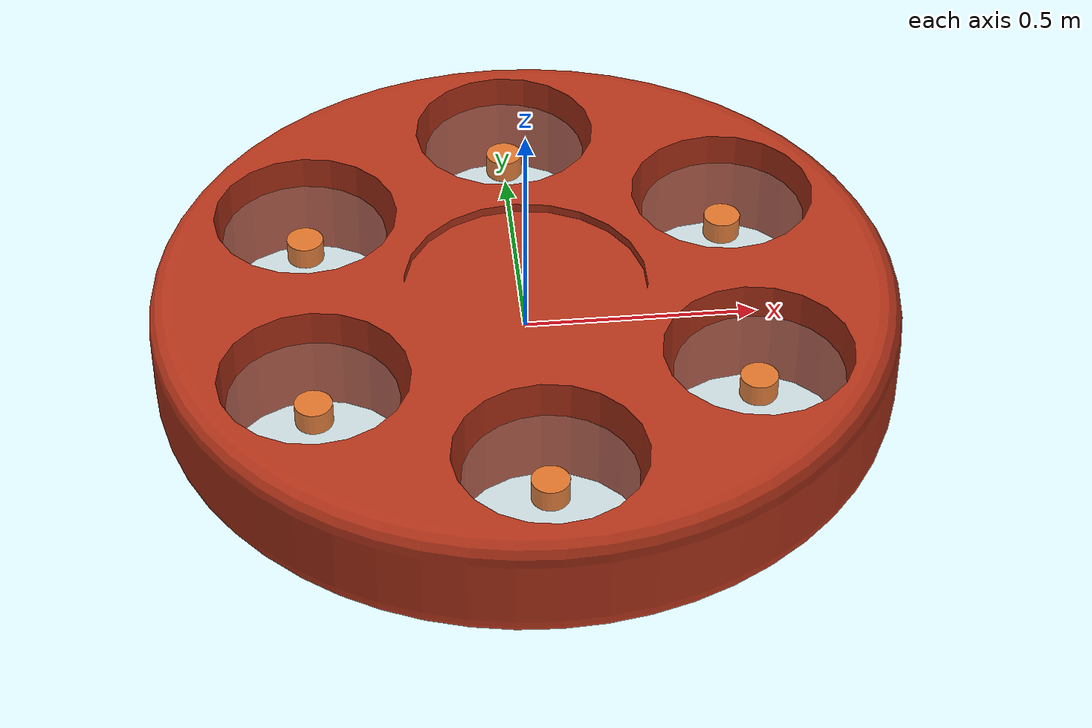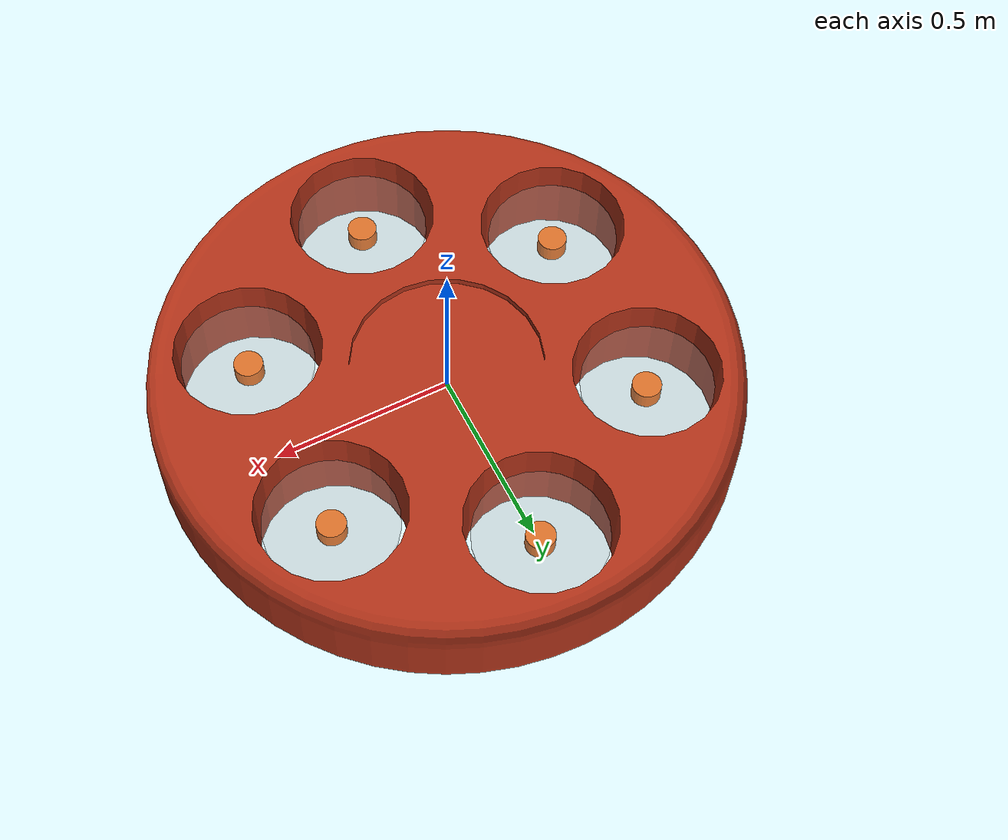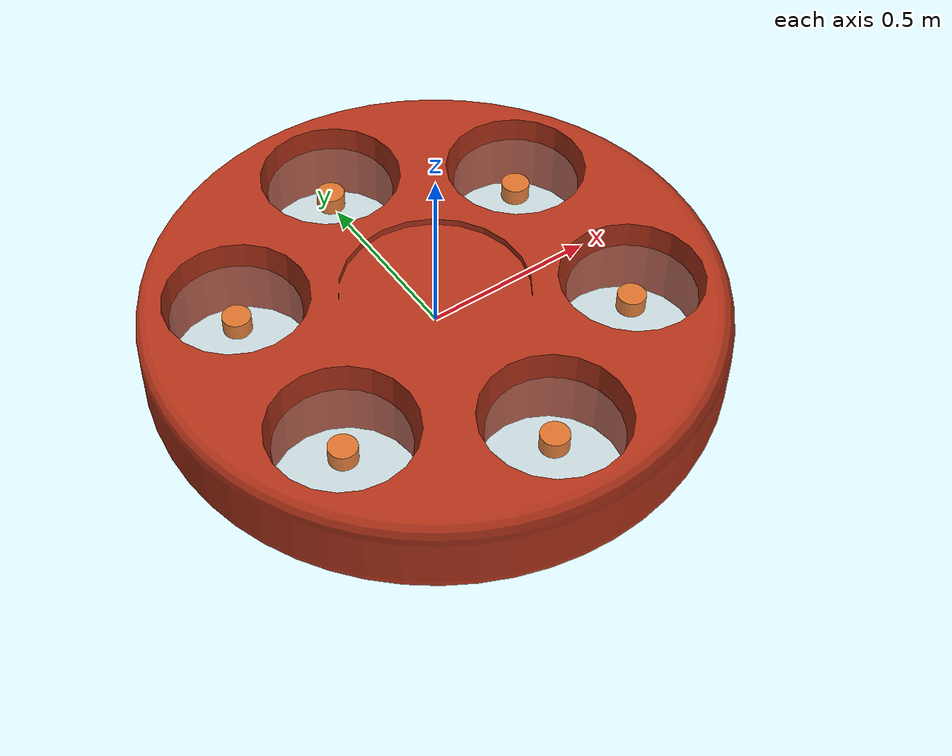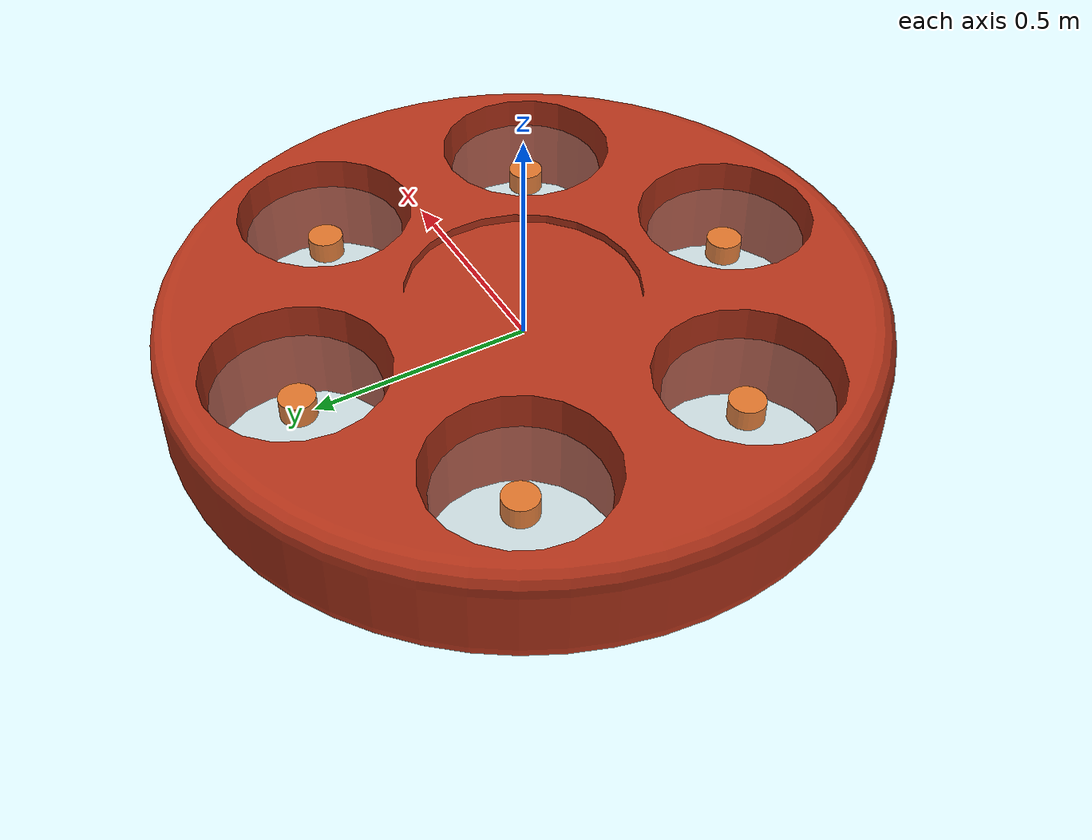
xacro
<?xml version="1.0"?>
<robot xmlns:xacro="http://ros.org/wiki/xacro" name="copter">

<!-- Ray macros -->
	<xacro:include filename="$(find theatre_uav_description)/urdf/test_ray.xacro"/>

  	<xacro:include filename="$(find theatre_uav_description)/urdf/common_properties.xacro"/>
<!-- Build the body frame -->

	<link name="frame">
		<collision>
			<origin	xyz="0 0 0" rpy="0 0 0" />
			<geometry>
				<cylinder radius="0.8" length="0.25"/>
			</geometry>
		</collision>
    		<visual>
      			<origin	xyz="0 0 0" rpy="${M_PI/2} 0 0" />
      			<geometry>
				<mesh filename="package://theatre_uav_description/meshes/frame.stl" />
      			</geometry>
     			<material name="Red" />
    		</visual>
		<inertial>
			<mass value="1.5"/>
			<inertia 	ixx="0" ixy="0" ixz="0"
					iyy="0" iyz="0"
					izz="0"/>
		</inertial>
	</link>

<!-- Build copter rays -->
	<ray_stick side="r" num="1" 	angle="-${M_PI/6}" />
	<ray_stick side="r" num="2"	angle="-${M_PI/2}" />
	<ray_stick side="r" num="3" 	angle="-${M_PI*5/6}" />
	<ray_stick side="l" num="1"	angle="${M_PI/6}" />
	<ray_stick side="l" num="2"	angle="${M_PI/2}" />
	<ray_stick side="l" num="3" 	angle="${M_PI*5/6}" />

</robot>

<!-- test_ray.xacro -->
<robot xmlns:xacro="http://ros.org/wiki/xacro" name="copter_ray">

<!-- Build ray -->
	<xacro:macro name="ray_stick" params="side num angle">

  	<joint name="ray_joint_${side}${num}" type="revolute">
    		<origin xyz="0 0 0" rpy="0 0 ${angle}" />
    		<parent link="frame" />
    		<child link="arm_${side}${num}" />
		<limit lower="0" upper="0" effort="0" velocity="0" />
  	</joint>

    	<link name="arm_${side}${num}">
		<inertial>
			<mass value="0.08"/>
			<inertia 	ixx="0" ixy="0" ixz="0"
					iyy="0" iyz="0"
					izz="0"/>
		</inertial>
	</link>

  	<joint name="motor_joint_${side}${num}" type="revolute">
    		<origin xyz="0.535 0 0" rpy="0 0 0" />
    		<parent link="arm_${side}${num}" />
    		<child link="motor_${side}${num}" />
		<limit lower="0" upper="0" effort="0" velocity="0" />
  	</joint>

    	<link name="motor_${side}${num}">
    		<visual>
      			<origin	xyz="0 0 0.03" rpy="0 0 0" />
      			<geometry>
				<cylinder radius="0.04" length="0.05"/>
      			</geometry>
     			<material name="Orange" />
    		</visual>
		<inertial>
			<mass value="0.055"/>
			<inertia 	ixx="0" ixy="0" ixz="0"
					iyy="0" iyz="0"
					izz="0"/>
		</inertial>
	</link>

  	<joint name="propeller_joint_${side}${num}" type="revolute">
    		<origin xyz="0 0 0.055" rpy="0 0 0" />
    		<parent link="motor_${side}${num}" />
    		<child link="propeller_${side}${num}" />
    		<limit lower="0" upper="0" effort="0" velocity="0" />
  	</joint>

    	<link name="propeller_${side}${num}">
    		<visual>
      			<origin	xyz="0 0 0" rpy="0 0 0" />
      			<geometry>
				<cylinder radius="0.18" length="0.015"/>
      			</geometry>
     			<material name="Grey" />
    		</visual>
		<inertial>
			<mass value="0.015"/>
			<inertia 	ixx="0" ixy="0" ixz="0"
					iyy="0" iyz="0"
					izz="0"/>
		</inertial>
	</link>
	</xacro:macro>

</robot>

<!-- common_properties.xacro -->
<!--
  Various useful properties such as constants and materials
 -->
<robot name="xacro_properties" xmlns:xacro="http://ros.org/wiki/xacro">
  <xacro:property name="M_PI" value="3.1415926535897931" />

    <material name="White">
      <color rgba="0.9 0.9 0.9 1"/>
    </material>

    <material name="Grey">
      <color rgba="0.6 0.6 0.6 0.3"/>
    </material>

    <material name="Grey_frame">
      <color rgba="0.6 0.6 0.6 1"/>
    </material>

    <material name="Black">
      <color rgba="0.1 0.1 0.1 1"/>
    </material>

    <material name="Red">
      <color rgba="0.7 0.2 0.1 1"/>
    </material>

    <material name="Grey_blue">
      <color rgba="0.1 0.1 0.3 0.3" />
    </material>

    <material name="Orange">
      <color rgba="1.0 0.4 0.0 1"/>
    </material>

</robot>
